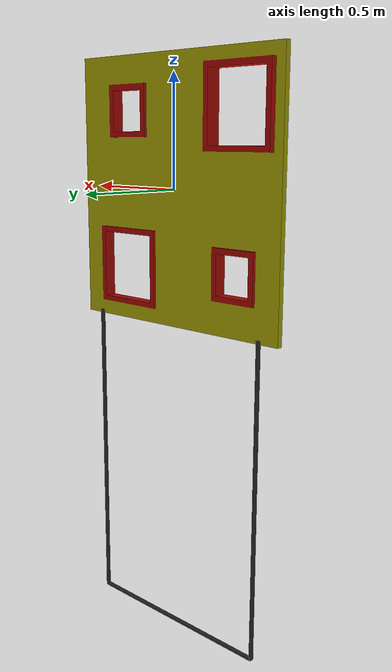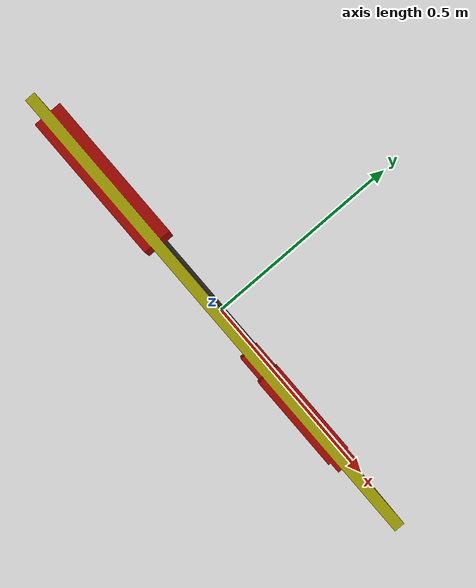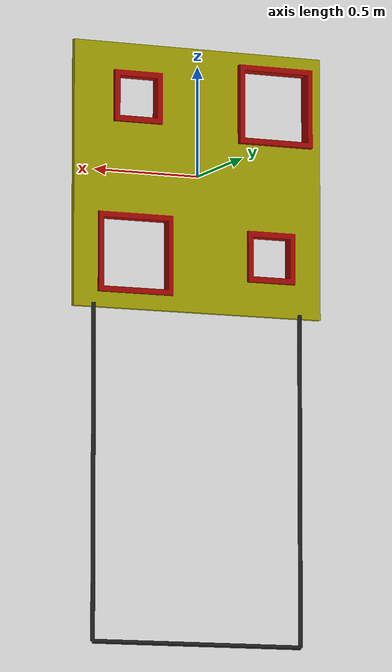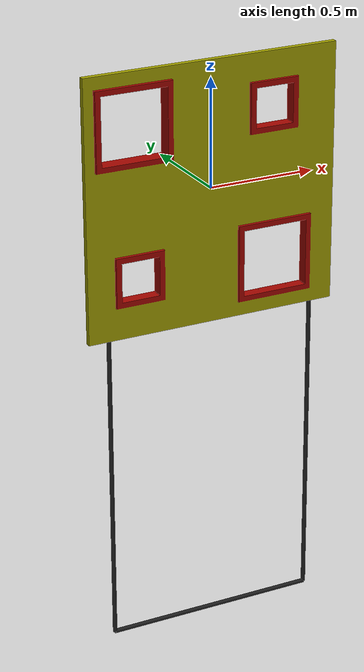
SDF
<?xml version='1.0'?>
<sdf version='1.5'>

  <model name='torpedo_target'>
    <pose>0 0 0 0 0 0</pose>
    <self_collide> 0 </self_collide>
    <static> 1</static>

    <link name='board'>
      <pose>0 0 0 0 0 0</pose>
      <visual name='main'>
        <geometry>
            <mesh><uri>file://torpedo_target/TorpedoTarget.dae</uri></mesh>
        </geometry>
      </visual>
      <collision name='main'>
        <pose>0 0 0 0 0 0</pose>
        <geometry>
            <mesh><uri>file://torpedo_target/TorpedoTarget.dae</uri></mesh>
        </geometry>
      </collision>
    </link>

    <link name='legs'>
      <visual name='leg1'>
        <pose>-0.5 0 -1.35 0 0 0 </pose>
        <geometry>
          <cylinder>
            <radius>0.01</radius>
            <length>1.5</length>
          </cylinder>
        </geometry>
        <material>
          <script>
            <uri>file://media/materials/scripts/gazebo.material</uri>
            <name>Gazebo/FlatBlack</name>
          </script>
          <diffuse>0.3 0.3 0.3 1</diffuse>
        </material>
      </visual>
      <visual name='leg2'>
        <pose>0.5 0 -1.35 0 0 0 </pose>
        <geometry>
          <cylinder>
            <radius>0.01</radius>
            <length>1.5</length>
          </cylinder>
        </geometry>
        <material>
          <script>
            <uri>file://media/materials/scripts/gazebo.material</uri>
            <name>Gazebo/FlatBlack</name>
          </script>
          <diffuse>0.3 0.3 0.3 1</diffuse>
        </material>
      </visual>
      <visual name='floor'>
        <pose>0 0 -2.1 0 1.5707 0</pose>
        <geometry>
          <cylinder>
            <radius>0.01</radius>
            <length>1</length>
          </cylinder>
        </geometry>
        <material>
          <script>
            <uri>file://media/materials/scripts/gazebo.material</uri>
            <name>Gazebo/FlatBlack</name>
          </script>
          <diffuse>0.3 0.3 0.3 1</diffuse>
        </material>
      </visual>
    </link>

  </model>
</sdf>
